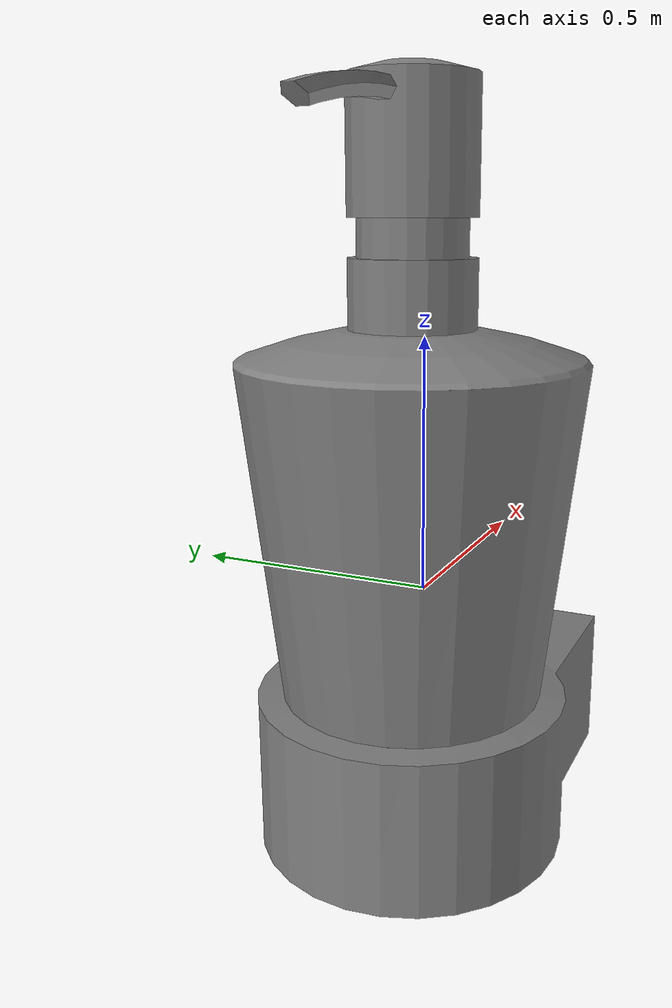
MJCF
<?xml version='1.0' encoding='UTF-8'?>
<mujoco model="partnet_e6676d26-1fb8-4e3b-a013-5a1d52decc9b">
  <compiler angle="radian"/>
  <asset>
    <mesh name="original_3" content_type="model/obj" file="textured_objs/original_3.obj"/>
    <mesh name="original_4" content_type="model/obj" file="textured_objs/original_4.obj"/>
    <mesh name="original_6" content_type="model/obj" file="textured_objs/original_6.obj"/>
    <mesh name="original_5" content_type="model/obj" file="textured_objs/original_5.obj"/>
    <mesh name="original_8" content_type="model/obj" file="textured_objs/original_8.obj"/>
    <mesh name="original_9" content_type="model/obj" file="textured_objs/original_9.obj"/>
    <mesh name="original_7" content_type="model/obj" file="textured_objs/original_7.obj"/>
    <mesh name="original_1" content_type="model/obj" file="textured_objs/original_1.obj"/>
    <mesh name="original_10" content_type="model/obj" file="textured_objs/original_10.obj"/>
  </asset>
  <worldbody>
    <body name="base">
      <body name="link_2" quat="0.5 0.5 -0.5 -0.5">
        <geom type="mesh" mesh="original_8"/>
        <geom type="mesh" mesh="original_9"/>
        <geom type="mesh" mesh="original_7"/>
        <geom type="mesh" mesh="original_1"/>
        <geom type="mesh" mesh="original_10"/>
        <body name="link_1_helper" pos="-0.0023865 0 0.0543975">
          <inertial pos="0 0 0" mass="1e-06" diaginertia="1e-10 1e-10 1e-10"/>
          <joint name="joint_4" pos="0 0 0" axis="0 1 0" type="slide" range="0 0.036"/>
          <body name="link_1">
            <joint name="joint_1" pos="0 0 0" axis="0 -1 0"/>
            <geom pos="0.0023865 0 -0.0543975" quat="1 0 0 0" type="mesh" mesh="original_6"/>
            <geom pos="0.0023865 0 -0.0543975" quat="1 0 0 0" type="mesh" mesh="original_5"/>
            <body name="link_0_helper" pos="5e-07 0 -5e-07">
              <inertial pos="0 0 0" mass="1e-06" diaginertia="1e-10 1e-10 1e-10"/>
              <joint name="joint_3" pos="0 0 0" axis="0 -1 0" type="slide" range="0 0.07"/>
              <body name="link_0">
                <joint name="joint_0" pos="0 0 0" axis="0 1 0"/>
                <geom pos="0.002386 0 -0.054397" quat="1 0 0 0" type="mesh" mesh="original_3"/>
                <geom pos="0.002386 0 -0.054397" quat="1 0 0 0" type="mesh" mesh="original_4"/>
              </body>
            </body>
          </body>
        </body>
      </body>
    </body>
  </worldbody>
</mujoco>
